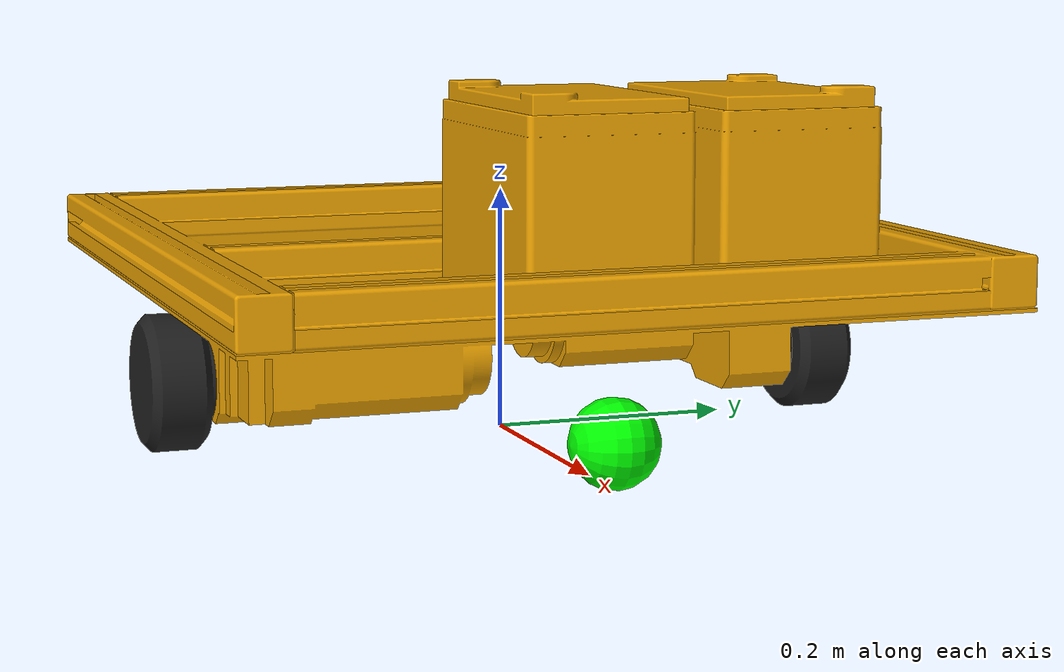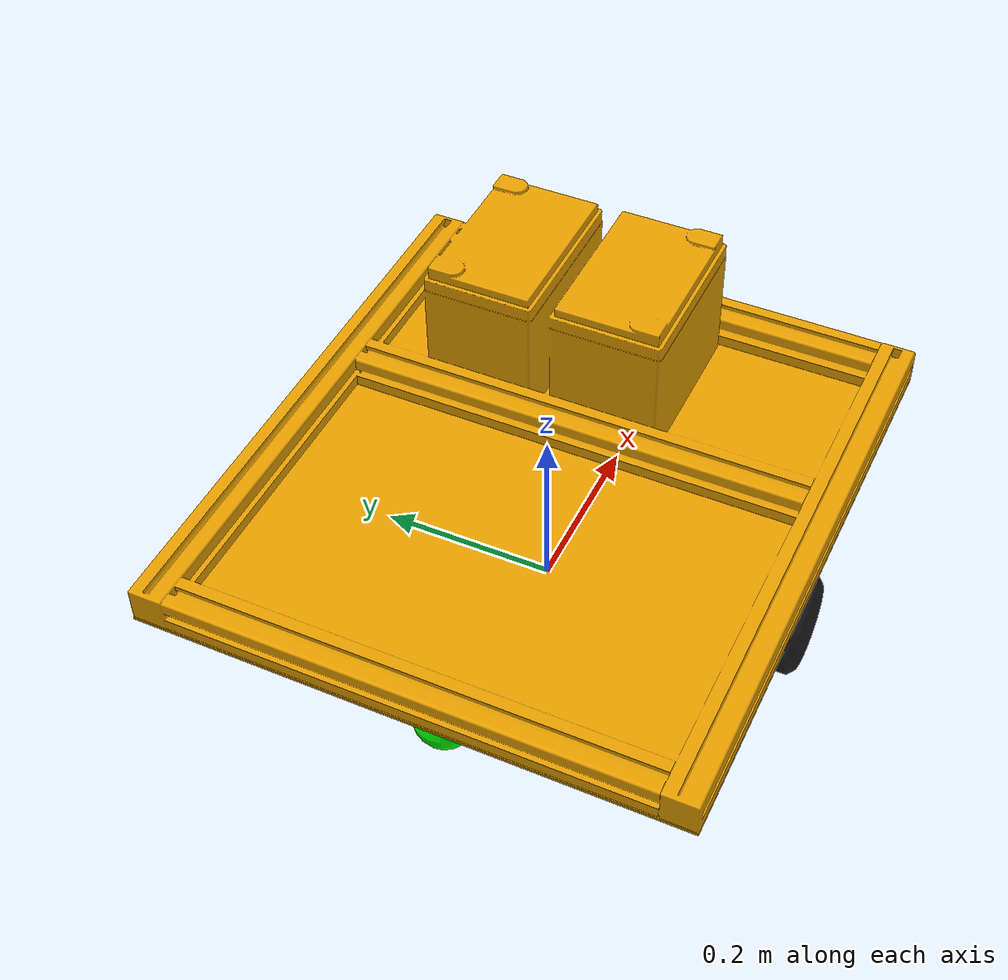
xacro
<?xml version="1.0"?>
<!-- Revolute-Revolute Manipulator -->
<robot name="awagv" xmlns:xacro="http://www.ros.org/wiki/xacro">
  <xacro:property name="PI" value="3.1415926535897931"/>
  <xacro:property name="RIGHT_ANGLE" value="1.570796327"/>
  <link name="base_link">
    <visual>
      <geometry>
        <mesh filename="package://awagv_description/meshes/awagv.stl" scale="1 1 1" />
      </geometry>
    </visual>
    <collision>
      <geometry>
        <mesh filename="package://awagv_description/meshes/awagv.stl" scale="1 1 1"/>
      </geometry>
    </collision>
   <inertial>
    <origin xyz="0.0 0.0 0.1675218"/>
    <mass value="14.84863433"/>
    <inertia ixx="0.000000388" ixy="-0.000000015" ixz="-0.000000071" iyy="0.000000414" iyz="-0.00000002" izz="0.000000675"/>
   </inertial>
  </link>

  <link name="left_wheel_link">
    <visual>
      <geometry>
        <mesh filename="package://awagv_description/meshes/agvwheel.stl" scale="1 1 1"/>
      </geometry>
      <origin xyz="0 0 0" rpy="0 0 0"/>
      <material name="black"/>
    </visual>

    <collision>
      <geometry>
        <mesh filename="package://awagv_description/meshes/agvwheel.stl" scale="1 1 1"/>
      </geometry>
    </collision>

   <inertial>
    <origin xyz="0 0 0"/>
    <mass value="1"/>
    <inertia ixx="0.1" ixy="0" ixz="0" iyy="0.1" iyz="0" izz="0.1"/>
   </inertial>

  </link>

  <joint name="left_wheel_joint" type="continuous">
    <parent link="base_link"/>
    <child link="left_wheel_link"/>
    <origin xyz="-0.28 0 0.055" rpy="0 0 ${RIGHT_ANGLE}"/>
    <axis xyz="0 1 0"/>
  </joint>

  <link name="right_wheel_link">
    <visual>
      <geometry>
        <mesh filename="package://awagv_description/meshes/agvwheel.stl" scale="1 1 1"/>
      </geometry>
      <origin xyz="0 0 0" rpy="0 0 ${-RIGHT_ANGLE*2}"/>
      <axis xyz="0 0 0"/>
      <material name="black"/>
    </visual>

    <collision>
      <geometry>
        <mesh filename="package://awagv_description/meshes/agvwheel.stl" scale="1 1 1"/>
      </geometry>
    </collision>

   <inertial>
      <origin xyz="0 0 0"/>
      <mass value="1"/>
      <inertia ixx="0.1" ixy="0" ixz="0" iyy="0.1" iyz="0" izz="0.1"/>
   </inertial>

  </link>

  <joint name="right_wheel_joint" type="continuous">
    <parent link="base_link"/>
    <child link="right_wheel_link"/>
    <origin xyz="0.28 0 0.055" rpy="0 0 ${RIGHT_ANGLE}"/>
    <axis xyz="0 1 0"/>
  </joint>

  <link name="caster_link_fl">
    <visual>
      <geometry>
        <sphere radius="0.035" />
      </geometry>
      <origin xyz="0 0 0" rpy="0 ${RIGHT_ANGLE} 0"/>
      <material name="green">
        <color rgba="0 1 0 1"/>
      </material>
    </visual>

    <collision>
      <geometry>
        <sphere radius="0.035" />
      </geometry>
      <origin xyz="0 0 0" rpy="0 ${RIGHT_ANGLE} 0"/>
    </collision>

    <inertial>
      <origin xyz="0 0 0"/>
      <mass value="0.500"/>
      <inertia ixx="0.0001" ixy="0" ixz="0" iyy="0.0001"  iyz="0" izz="0.0001"/>
    </inertial>
  </link>
  <link name="caster_link_rr">
    <visual>
      <geometry>
        <sphere radius="0.035" />
      </geometry>
      <origin xyz="0 0 0" rpy="0 ${RIGHT_ANGLE} 0"/>
      <material name="green">
        <color rgba="0 1 0 1"/>
      </material>
    </visual>

    <collision>
      <geometry>
        <sphere radius="0.035" />
      </geometry>
      <origin xyz="0 0 0" rpy="0 ${RIGHT_ANGLE} 0"/>
    </collision>

    <inertial>
      <origin xyz="0 0 0"/>
      <mass value="0.500"/>
      <inertia ixx="0.0001" ixy="0" ixz="0" iyy="0.0001"  iyz="0" izz="0.0001"/>
    </inertial>
  </link>

  <joint name="caster_joint_fl" type="fixed">
    <parent link="base_link"/>
    <child link="caster_link_fl"/>
    <origin xyz="0 0.25 0.035"/>
  </joint>

  <joint name="caster_joint_rr" type="fixed">
    <parent link="base_link"/>
    <child link="caster_link_rr"/>
    <origin xyz="0 -0.25 0.035"/>
  </joint>

 <link name="base_footprint"/>
  <joint name="base_link_joint" type="fixed">
   <parent link="base_footprint"/>
   <child link="base_link"/>
   <origin xyz="0 0 0" rpy="0 0 ${-RIGHT_ANGLE}"/>
 </joint>

  <!-- ===============  Transmission =============== -->
<transmission name="left_wheel_trans">
  <type>transmission_interface/SimpleTransmission</type>
  <joint name="left_wheel_joint">
    <hardwareInterface>VelocityJointInterface</hardwareInterface>
  </joint>
  <actuator name="left_wheel_motor">
    <hardwareInterface>VelocityJointInterface</hardwareInterface>
    <mechanicalReduction>30</mechanicalReduction>
  </actuator>
</transmission>
<transmission name="right_wheel_trans">
  <type>transmission_interface/SimpleTransmission</type>
  <joint name="right_wheel_joint">
    <hardwareInterface>VelocityJointInterface</hardwareInterface>
  </joint>
  <actuator name="right_wheel_motor">
    <hardwareInterface>VelocityJointInterface</hardwareInterface>
    <mechanicalReduction>30</mechanicalReduction>
  </actuator>
</transmission>

  <!-- =============== Gazebo =============== -->
  <gazebo>
    <plugin name="gazebo_ros_control" filename="libgazebo_ros_control.so">
      <robotNamespace>awagv</robotNamespace>
    </plugin>
  </gazebo>

 <gazebo reference="base_link">
   <selfCollide>true</selfCollide>
    <mu1 value="0.05" />
    <mu2 value="0.05" />
  </gazebo>

 <gazebo reference="left_wheel_link">
   <selfCollide>true</selfCollide>
    <mu1 value="0.9" />
    <mu2 value="0.9" />
  </gazebo>

 <gazebo reference="right_wheel_link">
   <selfCollide>true</selfCollide>
    <mu1 value="0.9" />
    <mu2 value="0.9" />
  </gazebo>

  <gazebo reference="caster_link_fl">
    <selfCollide>true</selfCollide>
    <!-- This caster is no frictional resistance. -->
    <mu1 value="0.05" />
    <mu2 value="0.05" />
  </gazebo>
  <gazebo reference="caster_link_rr">
    <selfCollide>true</selfCollide>
    <!-- This caster is no frictional resistance. -->
    <mu1 value="0.05" />
    <mu2 value="0.05" />
  </gazebo>

</robot>
